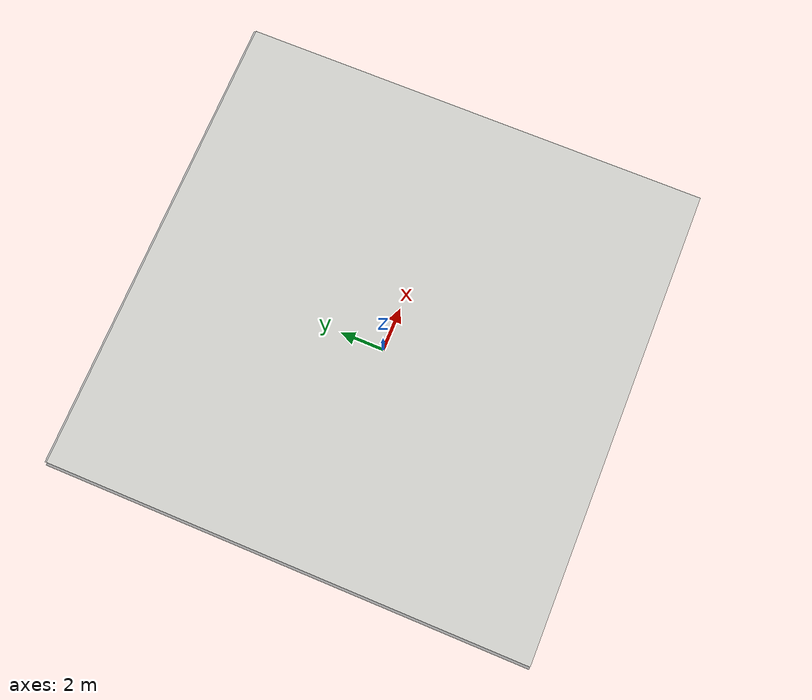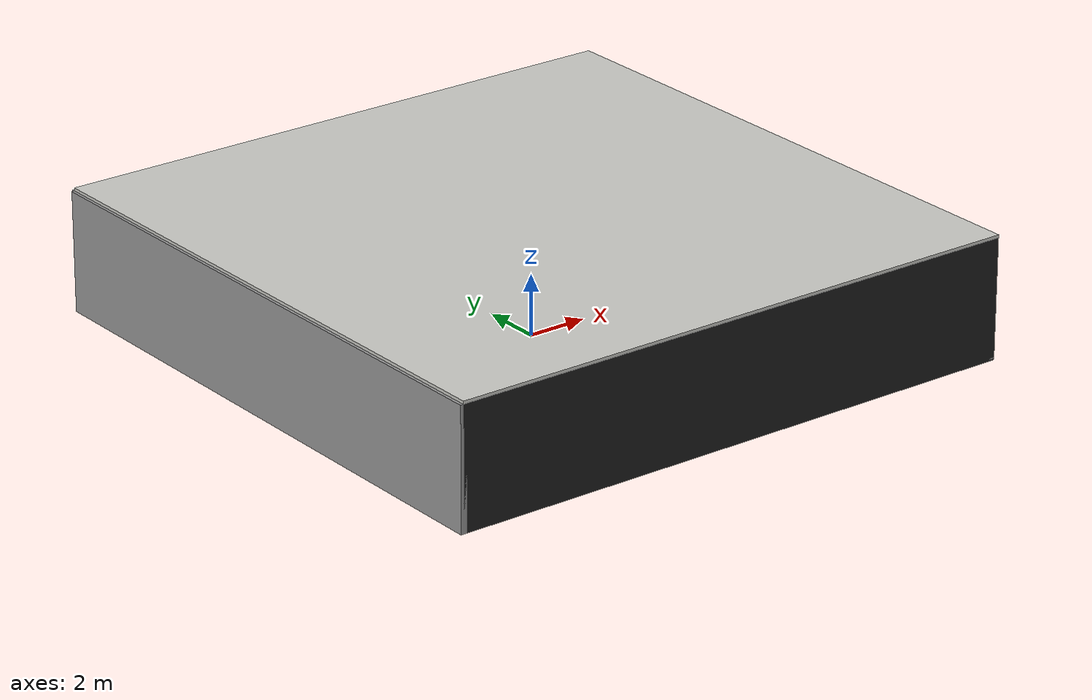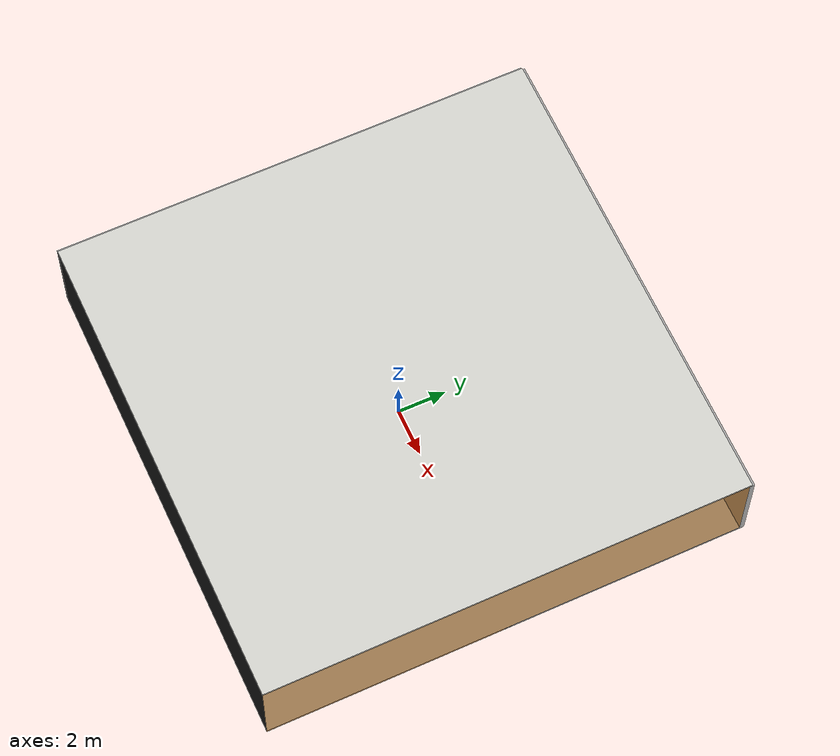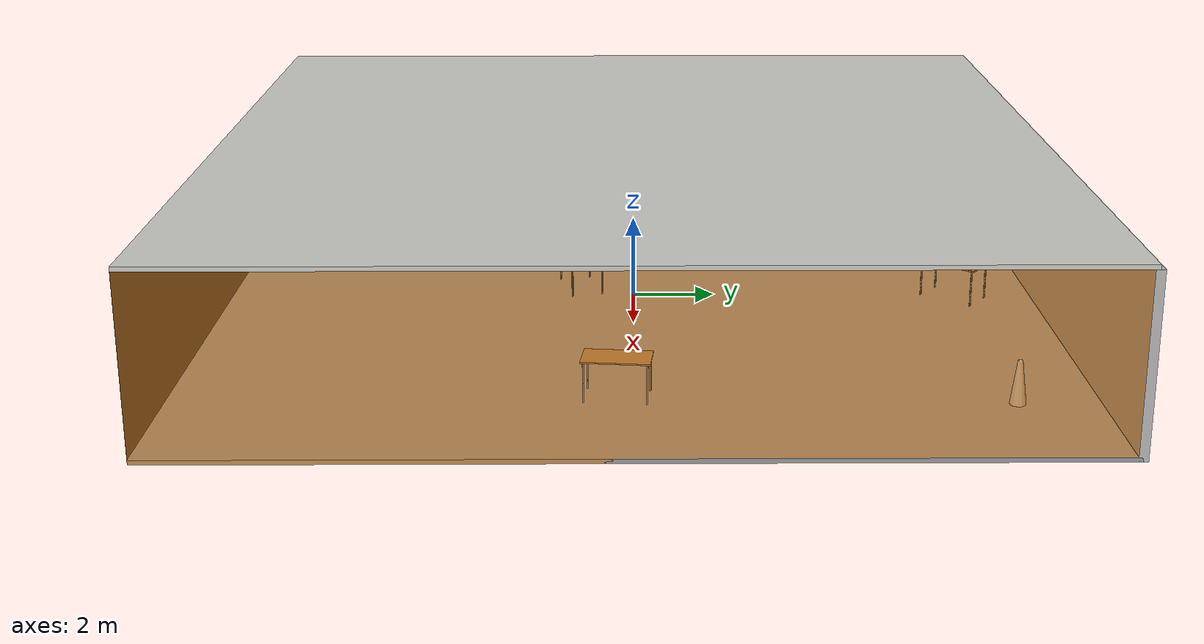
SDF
<sdf version="1.4">
 <world name="default">
  <physics type="ode">
   <max_step_size>0.001</max_step_size>
   <real_time_factor>1</real_time_factor>
   <real_time_update_rate>1000</real_time_update_rate>
   <gravity>0 0 -9.8</gravity>
  </physics>
  <scene><ambient>0.4 0.4 0.4 1</ambient><background>0.7 0.7 0.7 1</background><shadows>1</shadows></scene>
  <model name="Surrounding">
   <static>1</static>
   <link name="Ceiling">
    <collision name="Ceiling_Collision"><geometry><box><size>20 20 0.1</size></box></geometry></collision>
    <visual name="Ceiling_Visual">
     <geometry><box><size>20 20 0.1</size></box></geometry>
     <material>
      <script><uri>file://media/materials/scripts/gazebo.material</uri><name>Gazebo/CeilingTiled</name></script>
     </material>
    </visual>
    <pose>0 0 4.05 0 0 0</pose>
   </link>
   <link name="Wall_South">
    <collision name="Wall_South_Collision">
     <geometry><box><size>20 0 4</size></box></geometry>
     <pose>0 0 2 0 -0 0</pose>
    </collision>
    <visual name="Wall_South_Visual">
     <pose>0 0 2 0 -0 0</pose>
     <geometry><box><size>20 0 4</size></box></geometry>
     <material>
      <script><uri>file://media/materials/scripts/gazebo.material</uri><name>Gazebo/Black</name></script>
     </material>
    </visual>
    <velocity_decay><linear>0</linear><angular>0</angular></velocity_decay>
    <pose>0 -10 0 0 -0 0</pose>
   </link>
   <link name="Wall_East">
    <collision name="Wall_21_Collision">
     <geometry><box><size>20 0 4</size></box></geometry>
     <pose>0 0 2 0 -0 0</pose>
    </collision>
    <visual name="Wall_21_Visual">
     <pose>0 0 2 0 -0 0</pose>
     <geometry><box><size>20 0 4</size></box></geometry>
     <material>
      <script>
       <uri>file://media/materials/scripts/gazebo.material</uri>
       <name>Gazebo/OrangeTransparent</name>
      </script>
     </material>
    </visual>
    <velocity_decay><linear>0</linear><angular>0</angular></velocity_decay>
    <pose>10 0 0 0 -0 1.5708</pose>
   </link>
   <link name="Wall_North">
    <collision name="Wall_22_Collision">
     <geometry><box><size>20 0.2 4</size></box></geometry>
     <pose>0 0 2 0 -0 0</pose>
    </collision>
    <visual name="Wall_22_Visual">
     <pose>0 0 2 0 -0 0</pose>
     <geometry><box><size>20 0.2 4</size></box></geometry>
     <material>
      <script><uri>file://media/materials/scripts/gazebo.material</uri><name>Gazebo/LightOff</name></script>
     </material>
    </visual>
    <velocity_decay><linear>0</linear><angular>0</angular></velocity_decay>
    <pose>0 10 0 0 -0 0</pose>
   </link>
   <link name="Wall_West">
    <collision name="Wall_23_Collision">
     <geometry><box><size>20 0.2 4</size></box></geometry>
     <pose>0 0 2 0 -0 0</pose>
    </collision>
    <visual name="Wall_23_Visual">
     <pose>0 0 2 0 -0 0</pose>
     <geometry><box><size>20 0.2 4</size></box></geometry>
     <material>
      <script><uri>file://media/materials/scripts/gazebo.material</uri><name>Gazebo/Grey</name></script>
     </material>
    </visual>
    <velocity_decay><linear>0</linear><angular>0</angular></velocity_decay>
    <pose>-10 0 0 0 0 -1.5708</pose>
   </link>
   <link name="Ground_link">
    <collision name="collision">
     <pose>0 0 .05 0 -0 0</pose>
     <geometry><box><size>20 20 0.1</size></box></geometry>
    </collision>
    <visual name="visual">
     <pose>0 0 .05 0 -0 0</pose>
     <geometry><box><size>20 20 0.1</size></box></geometry>
     <material>
      <script><uri>file://media/materials/scripts/gazebo.material</uri><name>Gazebo/Grey</name></script>
     </material>
    </visual>
   </link>
   <static>1</static>
  </model>
  <spherical_coordinates>
   <surface_model>EARTH_WGS84</surface_model>
   <latitude_deg>0</latitude_deg>
   <longitude_deg>0</longitude_deg>
   <elevation>0</elevation>
   <heading_deg>0</heading_deg>
  </spherical_coordinates>
  <light name="lightball_0" type="diffuse">
   <diffuse>0.8 0.8 0.8 1</diffuse>
   <specular>0.2 0.2 0.2 1</specular>
   <attenuation>
    <range>100</range>
    <constant>0.7</constant>
    <linear>0.01</linear>
    <quadratic>0.001</quadratic>
   </attenuation>
   <direction>-0.5 0.1 -0.9</direction>
   <pose>5.12510843204 -1.08931184462 2.67331886455 0 0 0</pose>
  </light>
  <include><uri>model://cabinet</uri><pose>-3.44393542255 6.42312641344 0 0 0 0.845864080807</pose></include>
  <include><uri>model://table</uri><pose>-0.359947013404 -1.31546323095 0 0 0 0.248262736004</pose></include>
  <include><uri>model://table</uri><pose>0.459258274746 7.95905631492 0 0 0 0.908194352189</pose></include>
  <include><uri>model://table</uri><pose>6.82582217827 -0.391455031816 0 0 0 1.46938980574</pose></include>
  <include>
   <uri>model://construction_cone</uri>
   <pose>7.28854445178 8.09872320093 0 0 0 2.93882280313</pose>
  </include>
 </world>
</sdf>

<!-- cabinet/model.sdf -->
<sdf version="1.5">
  <model name="cabinet">
    <static>true</static>
    <link name="cabinet_bottom_plate">
      <inertial>
        <pose>0 0 -1 0 0 0</pose>
        <inertia>
          <ixx>2.050000</ixx>
          <ixy>0</ixy>
          <ixz>0</ixz>
          <iyy>2.050000</iyy>
          <iyz>0</iyz>
          <izz>2.050000</izz>
        </inertia>
        <mass>25.000000</mass>
      </inertial>
      <collision name="cabinet_bottom_plate_geom">
        <pose>0 0 0.010000 0 0 0</pose>
        <geometry>
          <box>
            <size>0.450000 0.450000 0.020000</size>
          </box>
        </geometry>
      </collision>
      <visual name="cabinet_bottom_plate_geom_visual">
        <pose>0 0 0.010000 0 0 0</pose>
        <geometry>
          <box>
            <size>0.450000 0.450000 0.020000</size>
          </box>
        </geometry>
        <material>
          <script>
            <uri>model://media/materials/scripts/gazebo.material</uri>
            <name>Gazebo/Wood</name>
          </script>
        </material>
      </visual>
      <collision name="cabinet_bottom_plate_geom_cabinet_back_plate">
        <pose>0.235000 0 0.510000 0 0 0</pose>
        <geometry>
          <box>
            <size>0.020000 0.450000 1.020000</size>
          </box>
        </geometry>
      </collision>
      <visual name="cabinet_bottom_plate_geom_cabinet_back_plate_visual">
        <pose>0.235000 0 0.510000 0 0 0</pose>
        <geometry>
          <box>
            <size>0.020000 0.450000 1.020000</size>
          </box>
        </geometry>
        <material>
          <script>
            <uri>model://media/materials/scripts/gazebo.material</uri>
            <name>Gazebo/Wood</name>
          </script>
        </material>
      </visual>
      <collision name="cabinet_bottom_plate_geom_cabinet_left_plate">
        <pose>0 0.235000 0.510000 0 0 0</pose>
        <geometry>
          <box>
            <size>0.450000 0.020000 1.020000</size>
          </box>
        </geometry>
      </collision>
      <visual name="cabinet_bottom_plate_geom_cabinet_left_plate_visual">
        <pose>0 0.235000 0.510000 0 0 0</pose>
        <geometry>
          <box>
            <size>0.450000 0.020000 1.020000</size>
          </box>
        </geometry>
        <material>
          <script>
            <uri>model://media/materials/scripts/gazebo.material</uri>
            <name>Gazebo/Wood</name>
          </script>
        </material>
      </visual>
      <collision name="cabinet_bottom_plate_geom_cabinet_middle_plate">
        <pose>0 0 0.510000 0 0 0</pose>
        <geometry>
          <box>
            <size>0.450000 0.450000 0.020000</size>
          </box>
        </geometry>
      </collision>
      <visual name="cabinet_bottom_plate_geom_cabinet_middle_plate_visual">
        <pose>0 0 0.510000 0 0 0</pose>
        <geometry>
          <box>
            <size>0.450000 0.450000 0.020000</size>
          </box>
        </geometry>
        <material>
          <script>
            <uri>model://media/materials/scripts/gazebo.material</uri>
            <name>Gazebo/Wood</name>
          </script>
        </material>
      </visual>
      <collision name="cabinet_bottom_plate_geom_cabinet_right_plate">
        <pose>0 -0.235000 0.510000 0 0 0</pose>
        <geometry>
          <box>
            <size>0.450000 0.020000 1.020000</size>
          </box>
        </geometry>
      </collision>
      <visual name="cabinet_bottom_plate_geom_cabinet_right_plate_visual">
        <pose>0 -0.235000 0.510000 0 0 0</pose>
        <geometry>
          <box>
            <size>0.450000 0.020000 1.020000</size>
          </box>
        </geometry>
        <material>
          <script>
            <uri>model://media/materials/scripts/gazebo.material</uri>
            <name>Gazebo/Wood</name>
          </script>
        </material>
      </visual>
      <collision name="cabinet_bottom_plate_geom_cabinet_top_plate">
        <pose>0 0 1.010000 0 0 0</pose>
        <geometry>
          <box>
            <size>0.450000 0.450000 0.020000</size>
          </box>
        </geometry>
      </collision>
      <visual name="cabinet_bottom_plate_geom_cabinet_top_plate_visual">
        <pose>0 0 1.010000 0 0 0</pose>
        <geometry>
          <box>
            <size>0.450000 0.450000 0.020000</size>
          </box>
        </geometry>
        <material>
          <script>
            <uri>model://media/materials/scripts/gazebo.material</uri>
            <name>Gazebo/Wood</name>
          </script>
        </material>
      </visual>
    </link>
  </model>
</sdf>

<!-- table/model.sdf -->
<sdf version="1.5">
  <model name="table">
    <static>true</static>
    <link name="link">
      <collision name="surface">
        <pose>0 0 1.0 0 0 0</pose>
        <geometry>
          <box>
            <size>1.5 0.8 0.03</size>
          </box>
        </geometry>
        <surface>
          <friction>
            <ode>
              <mu>0.6</mu>
              <mu2>0.6</mu2>
            </ode>
          </friction>
        </surface>
      </collision>
      <visual name="visual1">
        <pose>0 0 1.0 0 0 0</pose>
        <geometry>
          <box>
            <size>1.5 0.8 0.03</size>
          </box>
        </geometry>
        <material>
          <script>
            <uri>model://media/materials/scripts/gazebo.material</uri>
            <name>Gazebo/Wood</name>
          </script>
        </material>
      </visual>
      <collision name="front_left_leg">
        <pose>0.68 0.38 0.5 0 0 0</pose>
        <geometry>
          <cylinder>
            <radius>0.02</radius>
            <length>1.0</length>
          </cylinder>
        </geometry>
      </collision>
      <visual name="front_left_leg">
        <pose>0.68 0.38 0.5 0 0 0</pose>
        <geometry>
          <cylinder>
            <radius>0.02</radius>
            <length>1.0</length>
          </cylinder>
        </geometry>
        <material>
          <script>
            <uri>model://media/materials/scripts/gazebo.material</uri>
            <name>Gazebo/Grey</name>
          </script>
        </material>
      </visual>
      <collision name="front_right_leg">
        <pose>0.68 -0.38 0.5 0 0 0</pose>
        <geometry>
          <cylinder>
            <radius>0.02</radius>
            <length>1.0</length>
          </cylinder>
        </geometry>
      </collision>
      <visual name="front_right_leg">
        <pose>0.68 -0.38 0.5 0 0 0</pose>
        <geometry>
          <cylinder>
            <radius>0.02</radius>
            <length>1.0</length>
          </cylinder>
        </geometry>
        <material>
          <script>
            <uri>model://media/materials/scripts/gazebo.material</uri>
            <name>Gazebo/Grey</name>
          </script>
        </material>
      </visual>
      <collision name="back_right_leg">
        <pose>-0.68 -0.38 0.5 0 0 0</pose>
        <geometry>
          <cylinder>
            <radius>0.02</radius>
            <length>1.0</length>
          </cylinder>
        </geometry>
      </collision>
      <visual name="back_right_leg">
        <pose>-0.68 -0.38 0.5 0 0 0</pose>
        <geometry>
          <cylinder>
            <radius>0.02</radius>
            <length>1.0</length>
          </cylinder>
        </geometry>
        <material>
          <script>
            <uri>model://media/materials/scripts/gazebo.material</uri>
            <name>Gazebo/Grey</name>
          </script>
        </material>
      </visual>
      <collision name="back_left_leg">
        <pose>-0.68 0.38 0.5 0 0 0</pose>
        <geometry>
          <cylinder>
            <radius>0.02</radius>
            <length>1.0</length>
          </cylinder>
        </geometry>
      </collision>
      <visual name="back_left_leg">
        <pose>-0.68 0.38 0.5 0 0 0</pose>
        <geometry>
          <cylinder>
            <radius>0.02</radius>
            <length>1.0</length>
          </cylinder>
        </geometry>
        <material>
          <script>
            <uri>model://media/materials/scripts/gazebo.material</uri>
            <name>Gazebo/Grey</name>
          </script>
        </material>
      </visual>
    </link>
  </model>
</sdf>

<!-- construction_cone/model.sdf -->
<sdf version="1.5">
  <model name="Construction Cone">
    <link name="link">
      <collision name="collision">
        <geometry>
          <mesh>
            <scale>10 10 10</scale>
            <uri>file://isr-testbed/construction_cone/meshes/construction_cone.dae</uri>
          </mesh>
        </geometry>
      </collision>
      <visual name="visual">
        <geometry>
          <mesh>
            <scale>10 10 10</scale>
            <uri>file://isr-testbed/construction_cone/meshes/construction_cone.dae</uri>
          </mesh>
        </geometry>
      </visual>
    </link>
  </model>
</sdf>
